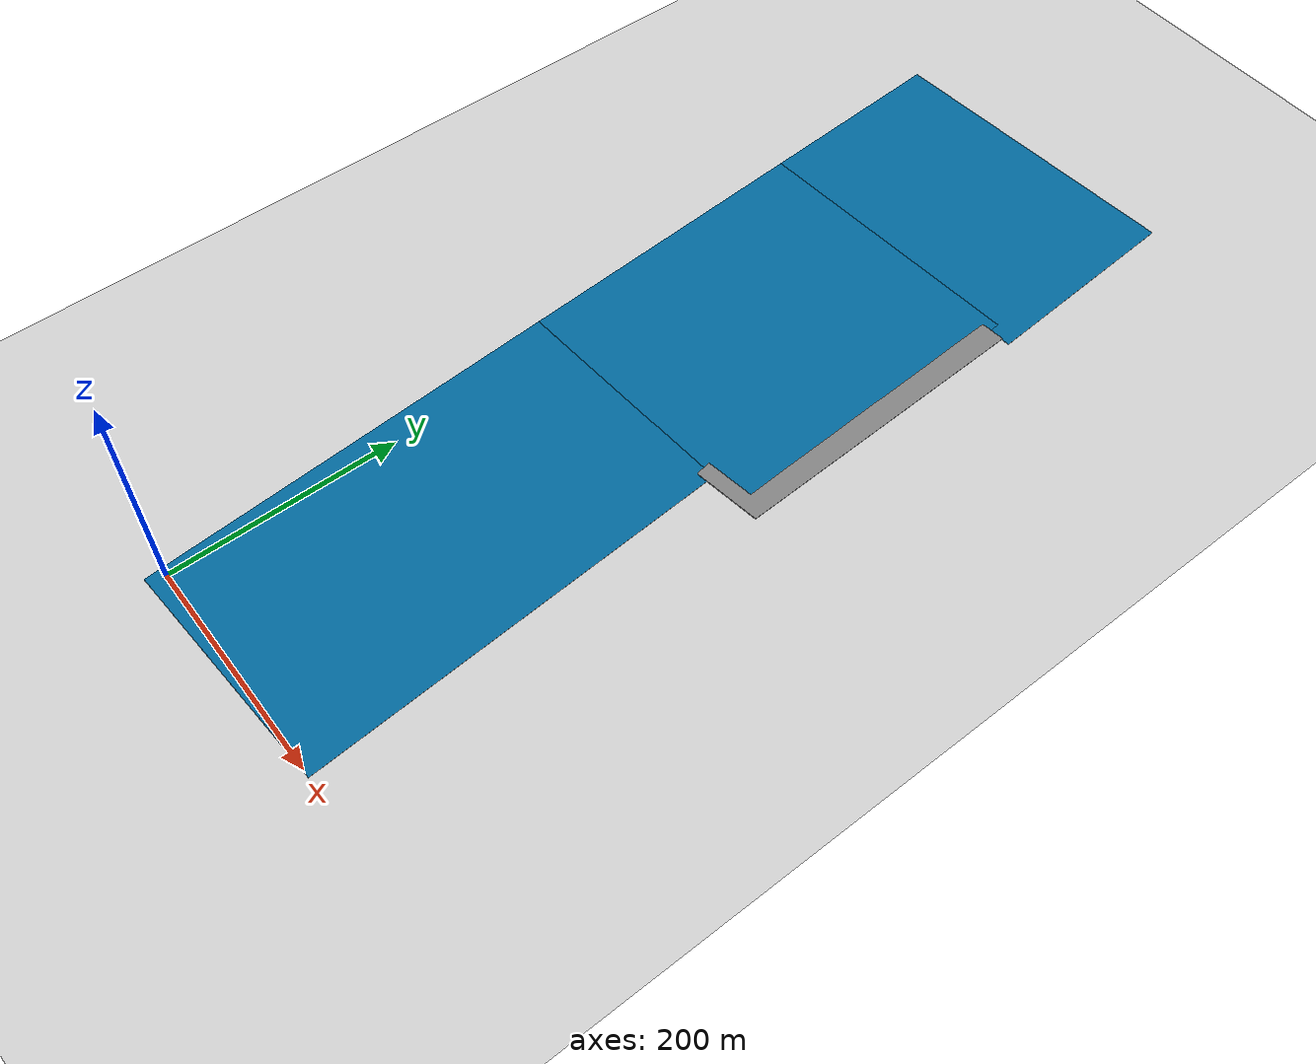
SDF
<sdf version="1.7">
 <world name="default">
  <plugin name="gazebo_ros_state" filename="libgazebo_ros_state.so">
   <ros><namespace>/gazebo</namespace></ros>
   <update_rate>1.0</update_rate>
  </plugin>
  <light name="sun" type="directional">
   <pose>0 0 10 0 -0 0</pose>
   <diffuse>0.8 0.8 0.8 1</diffuse>
   <specular>0.2 0.2 0.2 1</specular>
   <attenuation>
    <range>1000</range>
    <constant>0.9</constant>
    <linear>0.01</linear>
    <quadratic>0.001</quadratic>
   </attenuation>
   <direction>-0.5 0.1 -0.9</direction>
   <spot><inner_angle>0</inner_angle><outer_angle>0</outer_angle><falloff>0</falloff></spot>
  </light>
  <model name="ground_plane">
   <pose>50 50 -1 0 -0 0</pose>
   <static>1</static>
   <link name="link">
    <collision name="collision">
     <geometry><plane><normal>0 0 1</normal><size>100 100</size></plane></geometry>
     <surface><friction><ode><mu>100</mu><mu2>50</mu2></ode></friction></surface>
    </collision>
    <visual name="visual">
     <cast_shadows>0</cast_shadows>
     <geometry><plane><normal>0 0 1</normal><size>100 100</size></plane></geometry>
     <material>
      <script><uri>file://media/materials/scripts/gazebo.material</uri><name>Gazebo/Grey</name></script>
     </material>
    </visual>
   </link>
  </model>
  <gravity>0 0 -9.8</gravity>
  <magnetic_field>6e-06 2.3e-05 -4.2e-05</magnetic_field>
  <atmosphere type="adiabatic"/>
  <physics type="ode">
   <max_step_size>0.001</max_step_size>
   <real_time_factor>1</real_time_factor>
   <real_time_update_rate>1000</real_time_update_rate>
  </physics>
  <scene><ambient>0.4 0.4 0.4 1</ambient><background>0.7 0.7 0.7 1</background><shadows>1</shadows></scene>
  <audio><device>default</device></audio>
  <spherical_coordinates>
   <surface_model>EARTH_WGS84</surface_model>
   <latitude_deg>45.0270961</latitude_deg>
   <longitude_deg>14.625763</longitude_deg>
   <elevation>1.5</elevation>
   <heading_deg>180</heading_deg>
  </spherical_coordinates>
  <model name="sea_plane_A">
   <link name="link">
    <inertial>
     <mass>5.27875e+06</mass>
     <inertia>
      <ixx>4.66688e+09</ixx>
      <ixy>0</ixy>
      <ixz>0</ixz>
      <iyy>1.84866e+10</iyy>
      <iyz>0</iyz>
      <izz>2.31535e+10</izz>
     </inertia>
    </inertial>
    <visual name="visual">
     <cast_shadows>0</cast_shadows>
     <geometry><box><size>215 378 0.25</size></box></geometry>
     <material>
      <script>
       <uri>model://sea_plane/materials/scripts</uri>
       <uri>model://sea_plane/materials/textures</uri>
       <name>vrc/sea</name>
      </script>
      <shader type="pixel"><normal_map>__default__</normal_map></shader>
      <ambient>0 0.4 0.6 0</ambient>
      <diffuse>0 0.4 0.6 1</diffuse>
      <specular>0.2 0.2 0.2 1</specular>
      <emissive>0 0 0 1</emissive>
     </material>
    </visual>
    <collision name="collision">
     <geometry><box><size>215 378 0.25</size></box></geometry>
     <surface>
      <friction>
       <ode><mu>1</mu><mu2>1</mu2><fdir1>0 0 0</fdir1><slip1>0</slip1><slip2>0</slip2></ode>
       <torsional>
        <coefficient>1</coefficient>
        <patch_radius>0</patch_radius>
        <surface_radius>0</surface_radius>
        <use_patch_radius>1</use_patch_radius>
        <ode><slip>0</slip></ode>
       </torsional>
      </friction>
      <bounce><restitution_coefficient>0</restitution_coefficient><threshold>1e+06</threshold></bounce>
      <contact>
       <collide_without_contact>0</collide_without_contact>
       <collide_without_contact_bitmask>1</collide_without_contact_bitmask>
       <collide_bitmask>1</collide_bitmask>
       <ode>
        <soft_cfm>0</soft_cfm>
        <soft_erp>0.2</soft_erp>
        <kp>1e+13</kp>
        <kd>1</kd>
        <max_vel>0.01</max_vel>
        <min_depth>0</min_depth>
       </ode>
       <bullet>
        <split_impulse>1</split_impulse>
        <split_impulse_penetration_threshold>-0.01</split_impulse_penetration_threshold>
        <soft_cfm>0</soft_cfm>
        <soft_erp>0.2</soft_erp>
        <kp>1e+13</kp>
        <kd>1</kd>
       </bullet>
      </contact>
     </surface>
    </collision>
   </link>
   <static>1</static>
   <pose>87 181.108 0 0 -0 0.067999</pose>
  </model>
  <model name="sea_plane_C">
   <link name="link">
    <inertial>
     <mass>5.27875e+06</mass>
     <inertia>
      <ixx>4.66688e+09</ixx>
      <ixy>0</ixy>
      <ixz>0</ixz>
      <iyy>1.84866e+10</iyy>
      <iyz>0</iyz>
      <izz>2.31535e+10</izz>
     </inertia>
    </inertial>
    <visual name="visual">
     <cast_shadows>0</cast_shadows>
     <geometry><box><size>280 190 0.25</size></box></geometry>
     <material>
      <script>
       <uri>model://sea_plane/materials/scripts</uri>
       <uri>model://sea_plane/materials/textures</uri>
       <name>vrc/sea</name>
      </script>
      <shader type="pixel"><normal_map>__default__</normal_map></shader>
      <ambient>0 0.4 0.6 0</ambient>
      <diffuse>0 0.4 0.6 1</diffuse>
      <specular>0.2 0.2 0.2 1</specular>
      <emissive>0 0 0 1</emissive>
     </material>
    </visual>
    <collision name="collision">
     <geometry><box><size>280 190 0.25</size></box></geometry>
     <surface>
      <friction>
       <ode><mu>1</mu><mu2>1</mu2><fdir1>0 0 0</fdir1><slip1>0</slip1><slip2>0</slip2></ode>
       <torsional>
        <coefficient>1</coefficient>
        <patch_radius>0</patch_radius>
        <surface_radius>0</surface_radius>
        <use_patch_radius>1</use_patch_radius>
        <ode><slip>0</slip></ode>
       </torsional>
      </friction>
      <bounce><restitution_coefficient>0</restitution_coefficient><threshold>1e+06</threshold></bounce>
      <contact>
       <collide_without_contact>0</collide_without_contact>
       <collide_without_contact_bitmask>1</collide_without_contact_bitmask>
       <collide_bitmask>1</collide_bitmask>
       <ode>
        <soft_cfm>0</soft_cfm>
        <soft_erp>0.2</soft_erp>
        <kp>1e+13</kp>
        <kd>1</kd>
        <max_vel>0.01</max_vel>
        <min_depth>0</min_depth>
       </ode>
       <bullet>
        <split_impulse>1</split_impulse>
        <split_impulse_penetration_threshold>-0.01</split_impulse_penetration_threshold>
        <soft_cfm>0</soft_cfm>
        <soft_erp>0.2</soft_erp>
        <kp>1e+13</kp>
        <kd>1</kd>
       </bullet>
      </contact>
     </surface>
    </collision>
   </link>
   <static>1</static>
   <pose>81.6558 737.9 0 0 -0 0.067999</pose>
  </model>
  <light name="sun_clone" type="directional">
   <pose>80.4023 649.977 50 0 -0 0</pose>
   <diffuse>0.8 0.8 0.8 1</diffuse>
   <specular>0.2 0.2 0.2 1</specular>
   <direction>-0.483368 0.096674 -0.870063</direction>
   <attenuation>
    <range>1000</range>
    <constant>0.9</constant>
    <linear>0.01</linear>
    <quadratic>0.001</quadratic>
   </attenuation>
   <spot><inner_angle>0</inner_angle><outer_angle>0</outer_angle><falloff>0</falloff></spot>
  </light>
  <model name="asphalt_plane_zone_B">
   <link name="link">
    <inertial>
     <mass>1</mass>
     <inertia><ixx>1</ixx><ixy>0</ixy><ixz>0</ixz><iyy>1</iyy><iyz>0</iyz><izz>1</izz></inertia>
    </inertial>
    <pose>0 0 1.015 0 0 -0.045</pose>
    <visual name="visual">
     <geometry>
      <mesh>
       <uri>/home/albert/marinero_ws/src/marinero_simulations/models/asphalt_plane_zone_B/meshes/asphalt_plane_zone_B.dae</uri>
       <scale>1 1 1</scale>
      </mesh>
     </geometry>
     <material>
      <script>
       <uri>/home/albert/marinero_ws/src/marinero_simulations/models/asphalt_plane_zone_B/materials/scripts</uri>
       <uri>/home/albert/marinero_ws/src/marinero_simulations/models/asphalt_plane_zone_B/materials/textures/tarmac.png</uri>
       <name>asphalt_B/texture</name>
      </script>
      <shader type="pixel"><normal_map>__default__</normal_map></shader>
      <ambient>0.5 0.5 0.5 1</ambient>
      <diffuse>0.5 0.5 0.5 1</diffuse>
      <specular>0.2 0.2 0.2 1</specular>
      <emissive>0 0 0 1</emissive>
     </material>
    </visual>
    <collision name="collision">
     <geometry>
      <mesh>
       <uri>/home/albert/marinero_ws/src/marinero_simulations/models/asphalt_plane_zone_B/meshes/asphalt_plane_zone_B.dae</uri>
       <scale>1 1 1</scale>
      </mesh>
     </geometry>
     <surface>
      <friction>
       <ode><mu>1</mu><mu2>1</mu2><fdir1>0 0 0</fdir1><slip1>0.001</slip1><slip2>1e-05</slip2></ode>
       <torsional>
        <coefficient>1</coefficient>
        <patch_radius>0</patch_radius>
        <surface_radius>0</surface_radius>
        <use_patch_radius>1</use_patch_radius>
        <ode><slip>0</slip></ode>
       </torsional>
      </friction>
      <bounce><restitution_coefficient>0</restitution_coefficient><threshold>1e+06</threshold></bounce>
      <contact>
       <collide_without_contact>0</collide_without_contact>
       <collide_without_contact_bitmask>1</collide_without_contact_bitmask>
       <collide_bitmask>1</collide_bitmask>
       <ode>
        <soft_cfm>0</soft_cfm>
        <soft_erp>0.2</soft_erp>
        <kp>1e+13</kp>
        <kd>1</kd>
        <max_vel>0.01</max_vel>
        <min_depth>0</min_depth>
       </ode>
       <bullet>
        <split_impulse>1</split_impulse>
        <split_impulse_penetration_threshold>-0.01</split_impulse_penetration_threshold>
        <soft_cfm>0</soft_cfm>
        <soft_erp>0.2</soft_erp>
        <kp>1e+13</kp>
        <kd>1</kd>
       </bullet>
      </contact>
     </surface>
    </collision>
   </link>
   <static>1</static>
   <pose>171.772 367.982 0 0 -0 0.0676</pose>
  </model>
  <model name="sea_plane_B">
   <link name="link">
    <inertial>
     <mass>5.27875e+06</mass>
     <inertia>
      <ixx>4.66688e+09</ixx>
      <ixy>0</ixy>
      <ixz>0</ixz>
      <iyy>1.84866e+10</iyy>
      <iyz>0</iyz>
      <izz>2.31535e+10</izz>
     </inertia>
    </inertial>
    <visual name="visual">
     <cast_shadows>0</cast_shadows>
     <geometry><box><size>260 282 0.25</size></box></geometry>
     <material>
      <script>
       <uri>model://sea_plane/materials/scripts</uri>
       <uri>model://sea_plane/materials/textures</uri>
       <name>vrc/sea</name>
      </script>
      <shader type="pixel"><normal_map>__default__</normal_map></shader>
      <ambient>0 0.4 0.6 0</ambient>
      <diffuse>0 0.4 0.6 1</diffuse>
      <specular>0.2 0.2 0.2 1</specular>
      <emissive>0 0 0 1</emissive>
     </material>
    </visual>
    <collision name="collision">
     <geometry><box><size>260 282 0.25</size></box></geometry>
     <surface>
      <friction>
       <ode><mu>1</mu><mu2>1</mu2><fdir1>0 0 0</fdir1><slip1>0</slip1><slip2>0</slip2></ode>
       <torsional>
        <coefficient>1</coefficient>
        <patch_radius>0</patch_radius>
        <surface_radius>0</surface_radius>
        <use_patch_radius>1</use_patch_radius>
        <ode><slip>0</slip></ode>
       </torsional>
      </friction>
      <bounce><restitution_coefficient>0</restitution_coefficient><threshold>1e+06</threshold></bounce>
      <contact>
       <collide_without_contact>0</collide_without_contact>
       <collide_without_contact_bitmask>1</collide_without_contact_bitmask>
       <collide_bitmask>1</collide_bitmask>
       <ode>
        <soft_cfm>0</soft_cfm>
        <soft_erp>0.2</soft_erp>
        <kp>1e+13</kp>
        <kd>1</kd>
        <max_vel>0.01</max_vel>
        <min_depth>0</min_depth>
       </ode>
       <bullet>
        <split_impulse>1</split_impulse>
        <split_impulse_penetration_threshold>-0.01</split_impulse_penetration_threshold>
        <soft_cfm>0</soft_cfm>
        <soft_erp>0.2</soft_erp>
        <kp>1e+13</kp>
        <kd>1</kd>
       </bullet>
      </contact>
     </surface>
    </collision>
   </link>
   <static>1</static>
   <pose>87.0532 511.465 0 0 -0 0.068</pose>
  </model>
 </world>
</sdf>
